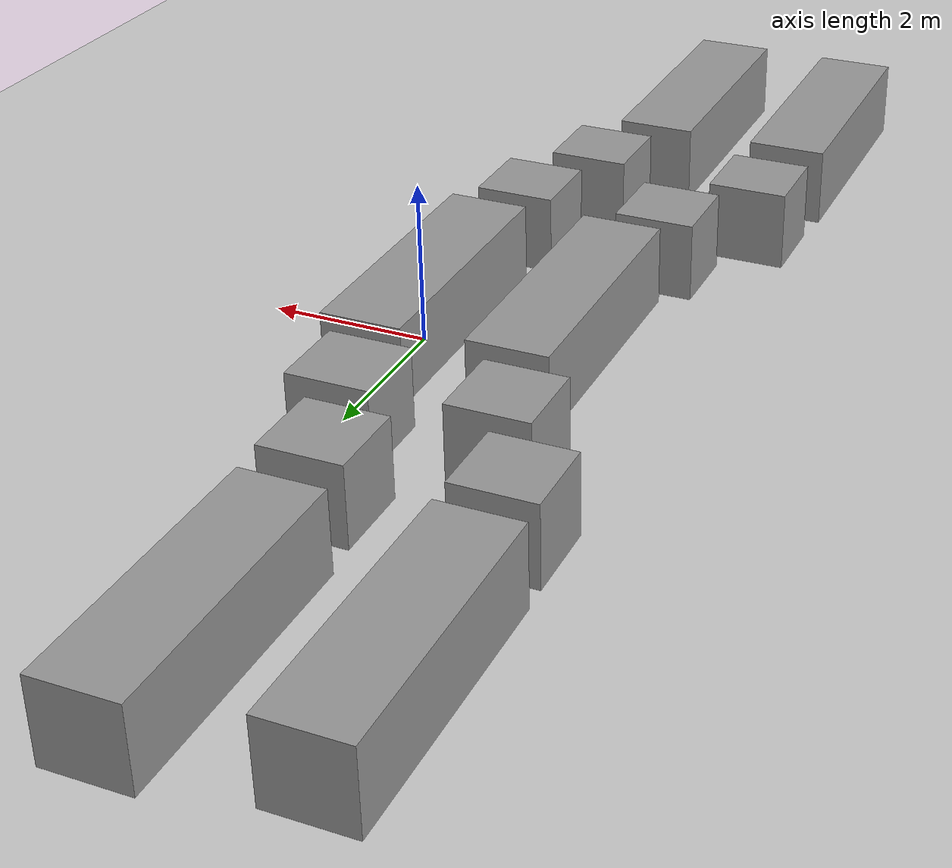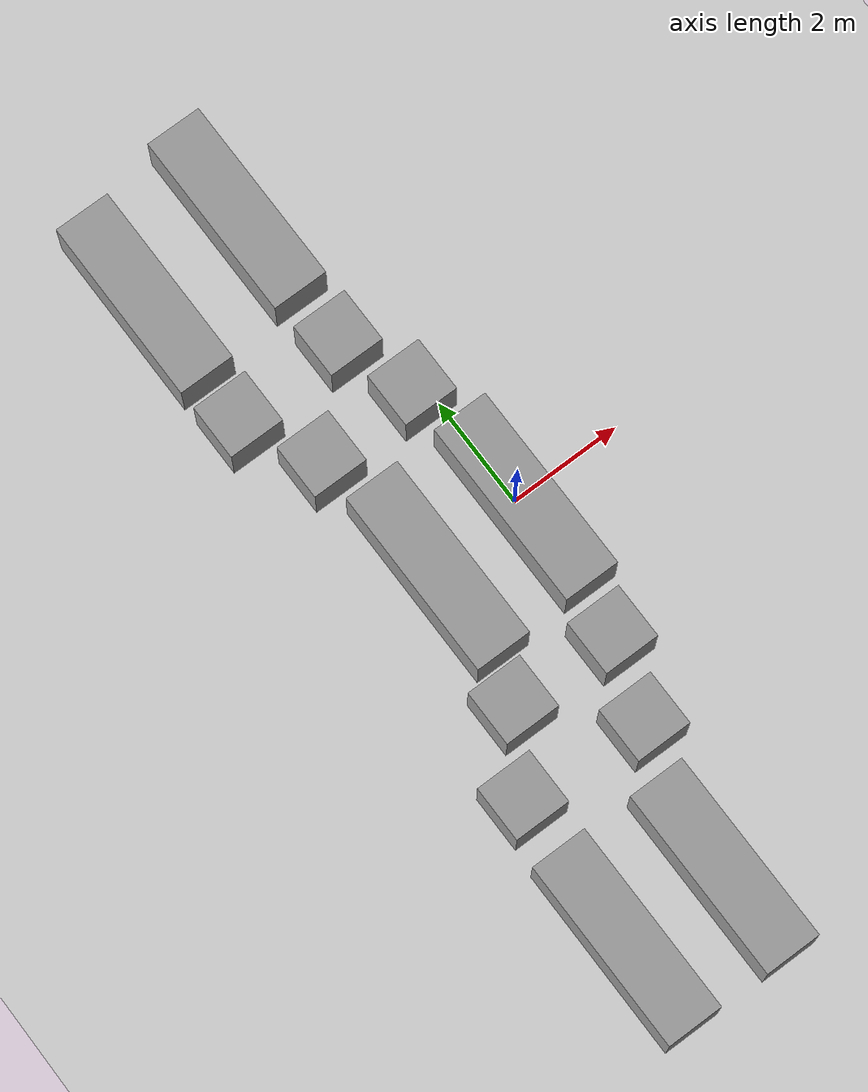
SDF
<sdf version="1.6">
 <world name="default">
  <light name="sun" type="directional">
   <pose>0 0 10 0 -0 0</pose>
   <diffuse>0.8 0.8 0.8 1</diffuse>
   <specular>0.1 0.1 0.1 1</specular>
   <attenuation>
    <range>1000</range>
    <constant>0.9</constant>
    <linear>0.01</linear>
    <quadratic>0.001</quadratic>
   </attenuation>
   <direction>-0.5 0.5 -1</direction>
  </light>
  <model name="ground_plane">
   <static>1</static>
   <link name="link">
    <collision name="collision">
     <geometry><plane><normal>0 0 1</normal><size>100 100</size></plane></geometry>
     <surface><friction><ode><mu>100</mu><mu2>50</mu2></ode></friction></surface>
    </collision>
    <visual name="visual">
     <cast_shadows>0</cast_shadows>
     <geometry><plane><normal>0 0 1</normal><size>100 100</size></plane></geometry>
     <material>
      <script><uri>file://media/materials/scripts/gazebo.material</uri><name>Gazebo/Grey</name></script>
     </material>
    </visual>
   </link>
  </model>
  <gravity>0 0 -1.62</gravity>
  <magnetic_field>6e-06 2.3e-05 -4.2e-05</magnetic_field>
  <atmosphere type="adiabatic"/>
  <physics name="default_physics" default="0" type="ode">
   <max_step_size>0.001</max_step_size>
   <real_time_factor>1</real_time_factor>
   <real_time_update_rate>1000</real_time_update_rate>
  </physics>
  <scene><ambient>0.4 0.4 0.4 1</ambient><background>0.7 0.7 0.7 1</background><shadows>1</shadows></scene>
  <spherical_coordinates>
   <surface_model>EARTH_WGS84</surface_model>
   <latitude_deg>0</latitude_deg>
   <longitude_deg>0</longitude_deg>
   <elevation>0</elevation>
   <heading_deg>0</heading_deg>
  </spherical_coordinates>
  <model name="unit_box_2">
   <pose>-2.11391 2.23599 0.499999 0 2e-06 0</pose>
   <link name="link">
    <inertial>
     <mass>1</mass>
     <inertia>
      <ixx>0.166667</ixx>
      <ixy>0</ixy>
      <ixz>0</ixz>
      <iyy>0.166667</iyy>
      <iyz>0</iyz>
      <izz>0.166667</izz>
     </inertia>
    </inertial>
    <collision name="collision"><geometry><box><size>1 1 1</size></box></geometry></collision>
    <visual name="visual">
     <geometry><box><size>1 1 1</size></box></geometry>
     <material>
      <script><name>Gazebo/Grey</name><uri>file://media/materials/scripts/gazebo.material</uri></script>
     </material>
    </visual>
   </link>
  </model>
  <model name="unit_box_3">
   <pose>-2.77455 3.53374 0.499999 -2e-06 0 0</pose>
   <link name="link">
    <inertial>
     <mass>1</mass>
     <inertia>
      <ixx>0.166667</ixx>
      <ixy>0</ixy>
      <ixz>0</ixz>
      <iyy>0.166667</iyy>
      <iyz>0</iyz>
      <izz>0.166667</izz>
     </inertia>
    </inertial>
    <collision name="collision"><geometry><box><size>1 1 1</size></box></geometry></collision>
    <visual name="visual">
     <geometry><box><size>1 1 1</size></box></geometry>
     <material>
      <script><name>Gazebo/Grey</name><uri>file://media/materials/scripts/gazebo.material</uri></script>
     </material>
    </visual>
   </link>
  </model>
  <model name="unit_box_6">
   <pose>-0.29006 2.31398 0.499999 2e-06 -0 0</pose>
   <link name="link">
    <inertial>
     <mass>1</mass>
     <inertia>
      <ixx>0.166667</ixx>
      <ixy>0</ixy>
      <ixz>0</ixz>
      <iyy>0.166667</iyy>
      <iyz>0</iyz>
      <izz>0.166667</izz>
     </inertia>
    </inertial>
    <collision name="collision"><geometry><box><size>1 1 1</size></box></geometry></collision>
    <visual name="visual">
     <geometry><box><size>1 1 1</size></box></geometry>
     <material>
      <script><name>Gazebo/Grey</name><uri>file://media/materials/scripts/gazebo.material</uri></script>
     </material>
    </visual>
   </link>
  </model>
  <model name="unit_box_7">
   <pose>-0.739075 3.65706 0.499999 -2e-06 0 0</pose>
   <link name="link">
    <inertial>
     <mass>1</mass>
     <inertia>
      <ixx>0.166667</ixx>
      <ixy>0</ixy>
      <ixz>0</ixz>
      <iyy>0.166667</iyy>
      <iyz>0</iyz>
      <izz>0.166667</izz>
     </inertia>
    </inertial>
    <collision name="collision"><geometry><box><size>1 1 1</size></box></geometry></collision>
    <visual name="visual">
     <geometry><box><size>1 1 1</size></box></geometry>
     <material>
      <script><name>Gazebo/Grey</name><uri>file://media/materials/scripts/gazebo.material</uri></script>
     </material>
    </visual>
   </link>
  </model>
  <model name="unit_box_8_0">
   <pose>-2.78788 6.01669 0.499995 -3e-06 -0 1e-06</pose>
   <link name="link">
    <inertial>
     <mass>1</mass>
     <inertia>
      <ixx>0.166667</ixx>
      <ixy>0</ixy>
      <ixz>0</ixz>
      <iyy>0.166667</iyy>
      <iyz>0</iyz>
      <izz>0.166667</izz>
     </inertia>
    </inertial>
    <collision name="collision"><geometry><box><size>1 3.35201 1</size></box></geometry></collision>
    <visual name="visual">
     <geometry><box><size>1 3.35201 1</size></box></geometry>
     <material>
      <script><name>Gazebo/Grey</name><uri>file://media/materials/scripts/gazebo.material</uri></script>
     </material>
    </visual>
   </link>
  </model>
  <model name="unit_box_8_0_clone">
   <pose>-0.793856 6.27432 0.499995 -3e-06 0 0</pose>
   <link name="link">
    <inertial>
     <mass>1</mass>
     <inertia>
      <ixx>0.166667</ixx>
      <ixy>0</ixy>
      <ixz>0</ixz>
      <iyy>0.166667</iyy>
      <iyz>0</iyz>
      <izz>0.166667</izz>
     </inertia>
    </inertial>
    <collision name="collision"><geometry><box><size>1 3.40701 1</size></box></geometry></collision>
    <visual name="visual">
     <geometry><box><size>1 3.40701 1</size></box></geometry>
     <material>
      <script><name>Gazebo/Grey</name><uri>file://media/materials/scripts/gazebo.material</uri></script>
     </material>
    </visual>
   </link>
  </model>
  <model name="unit_box_8_0_clone_0">
   <pose>0.017479 -0.214997 0.499995 3e-06 -0 0</pose>
   <link name="link">
    <inertial>
     <mass>1</mass>
     <inertia>
      <ixx>0.166667</ixx>
      <ixy>0</ixy>
      <ixz>0</ixz>
      <iyy>0.166667</iyy>
      <iyz>0</iyz>
      <izz>0.166667</izz>
     </inertia>
    </inertial>
    <collision name="collision"><geometry><box><size>1 3.40701 1</size></box></geometry></collision>
    <visual name="visual">
     <geometry><box><size>1 3.40701 1</size></box></geometry>
     <material>
      <script><name>Gazebo/Grey</name><uri>file://media/materials/scripts/gazebo.material</uri></script>
     </material>
    </visual>
   </link>
  </model>
  <model name="unit_box_8_0_clone_1">
   <pose>-1.74256 -0.271812 0.499995 3e-06 -0 0</pose>
   <link name="link">
    <inertial>
     <mass>1</mass>
     <inertia>
      <ixx>0.166667</ixx>
      <ixy>0</ixy>
      <ixz>0</ixz>
      <iyy>0.166667</iyy>
      <iyz>0</iyz>
      <izz>0.166667</izz>
     </inertia>
    </inertial>
    <collision name="collision"><geometry><box><size>1 3.40701 1</size></box></geometry></collision>
    <visual name="visual">
     <geometry><box><size>1 3.40701 1</size></box></geometry>
     <material>
      <script><name>Gazebo/Grey</name><uri>file://media/materials/scripts/gazebo.material</uri></script>
     </material>
    </visual>
   </link>
  </model>
  <model name="unit_box_2_clone">
   <pose>-2.08571 -2.66879 0.499999 -2e-06 0 0</pose>
   <link name="link">
    <inertial>
     <mass>1</mass>
     <inertia>
      <ixx>0.166667</ixx>
      <ixy>0</ixy>
      <ixz>0</ixz>
      <iyy>0.166667</iyy>
      <iyz>0</iyz>
      <izz>0.166667</izz>
     </inertia>
    </inertial>
    <collision name="collision"><geometry><box><size>1 1 1</size></box></geometry></collision>
    <visual name="visual">
     <geometry><box><size>1 1 1</size></box></geometry>
     <material>
      <script><name>Gazebo/Grey</name><uri>file://media/materials/scripts/gazebo.material</uri></script>
     </material>
    </visual>
   </link>
  </model>
  <model name="unit_box_2_clone_0">
   <pose>-0.196331 -2.71102 0.499999 -2e-06 0 0</pose>
   <link name="link">
    <inertial>
     <mass>1</mass>
     <inertia>
      <ixx>0.166667</ixx>
      <ixy>0</ixy>
      <ixz>0</ixz>
      <iyy>0.166667</iyy>
      <iyz>0</iyz>
      <izz>0.166667</izz>
     </inertia>
    </inertial>
    <collision name="collision"><geometry><box><size>1 1 1</size></box></geometry></collision>
    <visual name="visual">
     <geometry><box><size>1 1 1</size></box></geometry>
     <material>
      <script><name>Gazebo/Grey</name><uri>file://media/materials/scripts/gazebo.material</uri></script>
     </material>
    </visual>
   </link>
  </model>
  <model name="unit_box_2_clone_1">
   <pose>-2.86666 -3.94186 0.499999 -2e-06 0 0</pose>
   <link name="link">
    <inertial>
     <mass>1</mass>
     <inertia>
      <ixx>0.166667</ixx>
      <ixy>0</ixy>
      <ixz>0</ixz>
      <iyy>0.166667</iyy>
      <iyz>0</iyz>
      <izz>0.166667</izz>
     </inertia>
    </inertial>
    <collision name="collision"><geometry><box><size>1 1 1</size></box></geometry></collision>
    <visual name="visual">
     <geometry><box><size>1 1 1</size></box></geometry>
     <material>
      <script><name>Gazebo/Grey</name><uri>file://media/materials/scripts/gazebo.material</uri></script>
     </material>
    </visual>
   </link>
  </model>
  <model name="unit_box_2_clone_2">
   <pose>-0.637719 -4.09031 0.499999 -2e-06 0 0</pose>
   <link name="link">
    <inertial>
     <mass>1</mass>
     <inertia>
      <ixx>0.166667</ixx>
      <ixy>0</ixy>
      <ixz>0</ixz>
      <iyy>0.166667</iyy>
      <iyz>0</iyz>
      <izz>0.166667</izz>
     </inertia>
    </inertial>
    <collision name="collision"><geometry><box><size>1 1 1</size></box></geometry></collision>
    <visual name="visual">
     <geometry><box><size>1 1 1</size></box></geometry>
     <material>
      <script><name>Gazebo/Grey</name><uri>file://media/materials/scripts/gazebo.material</uri></script>
     </material>
    </visual>
   </link>
  </model>
  <model name="unit_box_8_0_clone_1_clone">
   <pose>-2.93047 -6.61529 0.499995 3e-06 -0 0</pose>
   <link name="link">
    <inertial>
     <mass>1</mass>
     <inertia>
      <ixx>0.166667</ixx>
      <ixy>0</ixy>
      <ixz>0</ixz>
      <iyy>0.166667</iyy>
      <iyz>0</iyz>
      <izz>0.166667</izz>
     </inertia>
    </inertial>
    <collision name="collision"><geometry><box><size>1 3.40701 1</size></box></geometry></collision>
    <visual name="visual">
     <geometry><box><size>1 3.40701 1</size></box></geometry>
     <material>
      <script><name>Gazebo/Grey</name><uri>file://media/materials/scripts/gazebo.material</uri></script>
     </material>
    </visual>
   </link>
  </model>
  <model name="unit_box_8_0_clone_1_clone_0">
   <pose>-1.07586 -6.64461 0.499995 -3e-06 0 0</pose>
   <link name="link">
    <inertial>
     <mass>1</mass>
     <inertia>
      <ixx>0.166667</ixx>
      <ixy>0</ixy>
      <ixz>0</ixz>
      <iyy>0.166667</iyy>
      <iyz>0</iyz>
      <izz>0.166667</izz>
     </inertia>
    </inertial>
    <collision name="collision"><geometry><box><size>1 3.40701 1</size></box></geometry></collision>
    <visual name="visual">
     <geometry><box><size>1 3.40701 1</size></box></geometry>
     <material>
      <script><name>Gazebo/Grey</name><uri>file://media/materials/scripts/gazebo.material</uri></script>
     </material>
    </visual>
   </link>
  </model>
 </world>
</sdf>
